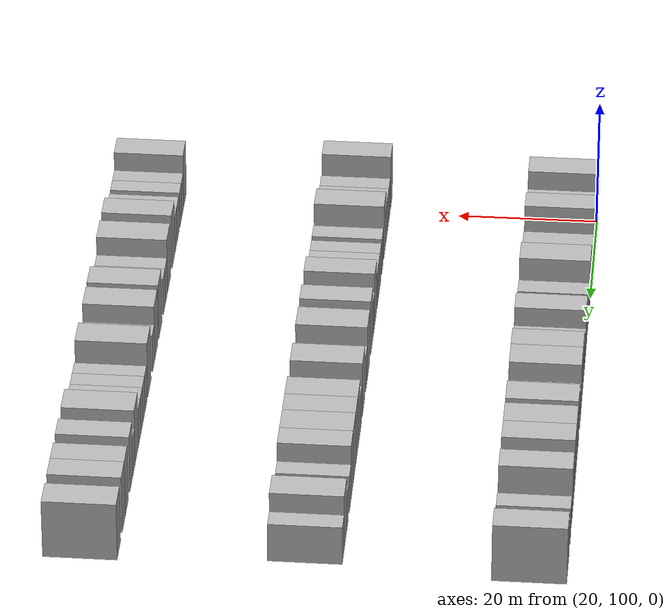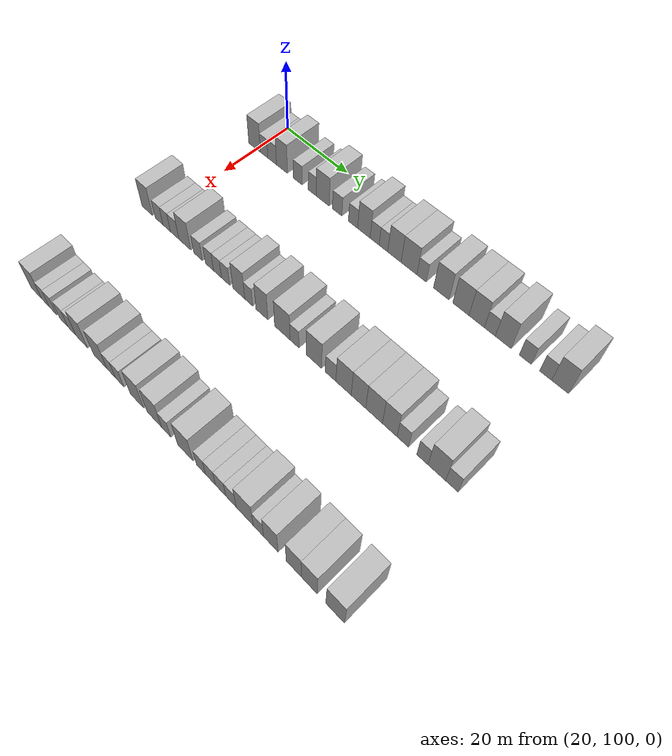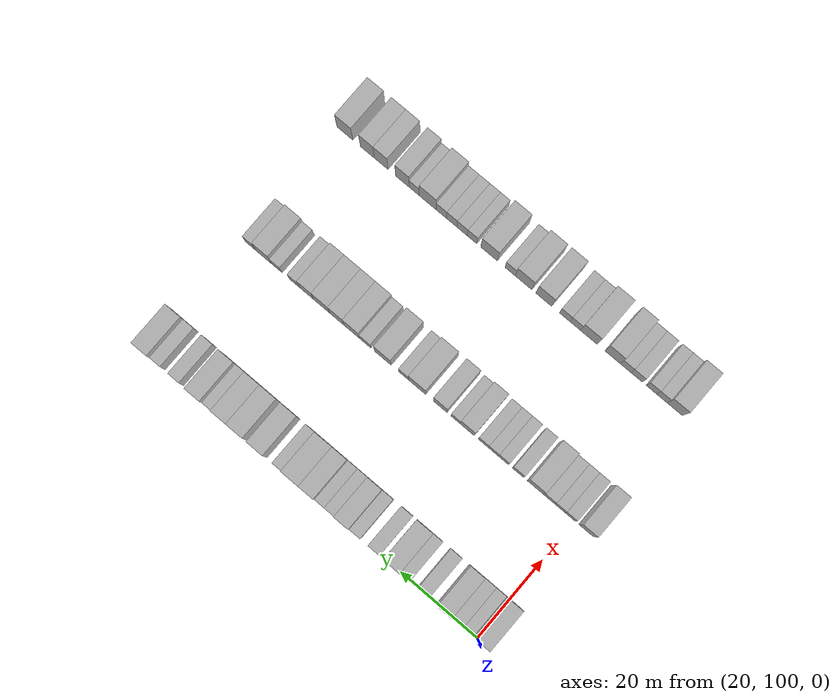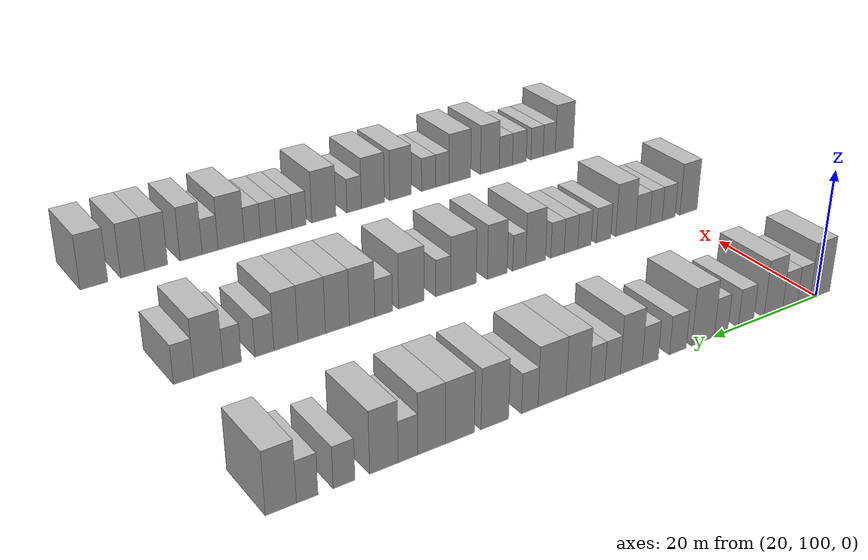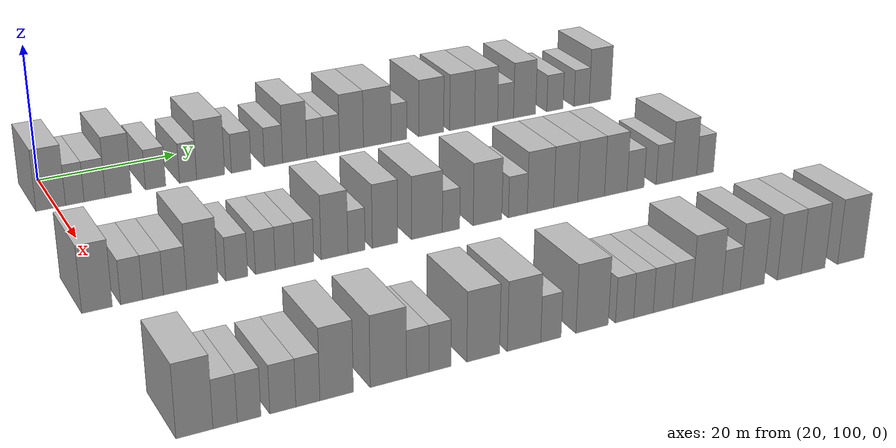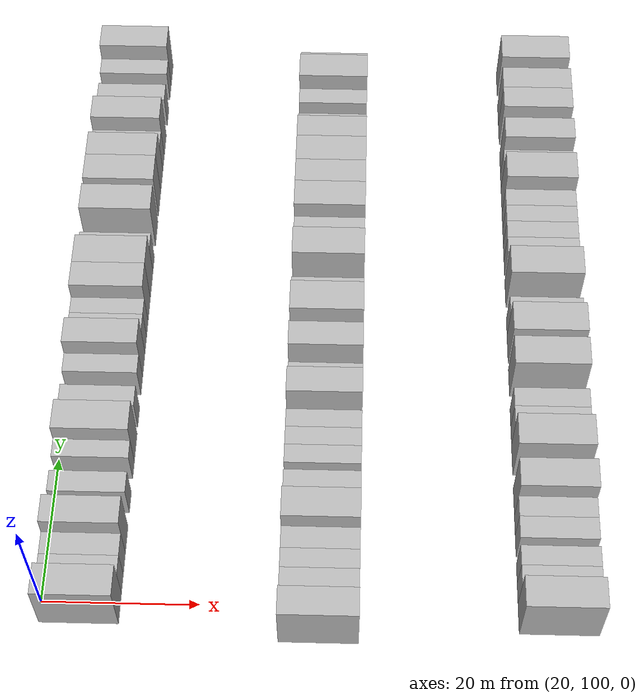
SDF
<sdf version="1.6">
 <world name="default">
  <model name="building_92">
   <static>1</static>
   <pose>25.0000 99.2605 0 0.000000 0.000000 0.000000</pose>
   <link name="link">
    <pose>0 0 4.50 0 0 0</pose>
    <collision name="collision"><geometry><box><size>10.0000 4.0514 9.0000</size></box></geometry></collision>
    <visual name="visual">
     <cast_shadows>0</cast_shadows>
     <geometry><box><size>10.0000 4.0514 9.0000</size></box></geometry>
     <material>
      <script>
       <uri>model://HANNAS_wall/materials/scripts</uri>
       <uri>model://HANNAS_wall/materials/textures</uri>
       <name>vrc/HANNAS_wall</name>
      </script>
     </material>
    </visual>
   </link>
  </model>
  <model name="building_93">
   <static>1</static>
   <pose>25.0000 102.5694 0 0.000000 0.000000 0.000000</pose>
   <link name="link">
    <pose>0 0 3.00 0 0 0</pose>
    <collision name="collision"><geometry><box><size>10.0000 2.5665 6.0000</size></box></geometry></collision>
    <visual name="visual">
     <cast_shadows>0</cast_shadows>
     <geometry><box><size>10.0000 2.5665 6.0000</size></box></geometry>
     <material>
      <script>
       <uri>model://HANNAS_wall/materials/scripts</uri>
       <uri>model://HANNAS_wall/materials/textures</uri>
       <name>vrc/HANNAS_wall</name>
      </script>
     </material>
    </visual>
   </link>
  </model>
  <model name="building_94">
   <static>1</static>
   <pose>25.0000 105.3348 0 0.000000 0.000000 0.000000</pose>
   <link name="link">
    <pose>0 0 3.00 0 0 0</pose>
    <collision name="collision"><geometry><box><size>10.0000 2.9642 6.0000</size></box></geometry></collision>
    <visual name="visual">
     <cast_shadows>0</cast_shadows>
     <geometry><box><size>10.0000 2.9642 6.0000</size></box></geometry>
     <material>
      <script>
       <uri>model://HANNAS_wall/materials/scripts</uri>
       <uri>model://HANNAS_wall/materials/textures</uri>
       <name>vrc/HANNAS_wall</name>
      </script>
     </material>
    </visual>
   </link>
  </model>
  <model name="building_95">
   <static>1</static>
   <pose>25.0000 108.6636 0 0.000000 0.000000 0.000000</pose>
   <link name="link">
    <pose>0 0 4.50 0 0 0</pose>
    <collision name="collision"><geometry><box><size>10.0000 3.6935 9.0000</size></box></geometry></collision>
    <visual name="visual">
     <cast_shadows>0</cast_shadows>
     <geometry><box><size>10.0000 3.6935 9.0000</size></box></geometry>
     <material>
      <script>
       <uri>model://HANNAS_wall/materials/scripts</uri>
       <uri>model://HANNAS_wall/materials/textures</uri>
       <name>vrc/HANNAS_wall</name>
      </script>
     </material>
    </visual>
   </link>
  </model>
  <model name="building_96">
   <static>1</static>
   <pose>25.0000 113.9725 0 0.000000 0.000000 0.000000</pose>
   <link name="link">
    <pose>0 0 3.00 0 0 0</pose>
    <collision name="collision"><geometry><box><size>10.0000 2.9242 6.0000</size></box></geometry></collision>
    <visual name="visual">
     <cast_shadows>0</cast_shadows>
     <geometry><box><size>10.0000 2.9242 6.0000</size></box></geometry>
     <material>
      <script>
       <uri>model://HANNAS_wall/materials/scripts</uri>
       <uri>model://HANNAS_wall/materials/textures</uri>
       <name>vrc/HANNAS_wall</name>
      </script>
     </material>
    </visual>
   </link>
  </model>
  <model name="building_97">
   <static>1</static>
   <pose>25.0000 118.6949 0 0.000000 0.000000 0.000000</pose>
   <link name="link">
    <pose>0 0 3.00 0 0 0</pose>
    <collision name="collision"><geometry><box><size>10.0000 2.5206 6.0000</size></box></geometry></collision>
    <visual name="visual">
     <cast_shadows>0</cast_shadows>
     <geometry><box><size>10.0000 2.5206 6.0000</size></box></geometry>
     <material>
      <script>
       <uri>model://HANNAS_wall/materials/scripts</uri>
       <uri>model://HANNAS_wall/materials/textures</uri>
       <name>vrc/HANNAS_wall</name>
      </script>
     </material>
    </visual>
   </link>
  </model>
  <model name="building_98">
   <static>1</static>
   <pose>25.0000 122.0379 0 0.000000 0.000000 0.000000</pose>
   <link name="link">
    <pose>0 0 4.50 0 0 0</pose>
    <collision name="collision"><geometry><box><size>10.0000 4.1654 9.0000</size></box></geometry></collision>
    <visual name="visual">
     <cast_shadows>0</cast_shadows>
     <geometry><box><size>10.0000 4.1654 9.0000</size></box></geometry>
     <material>
      <script>
       <uri>model://HANNAS_wall/materials/scripts</uri>
       <uri>model://HANNAS_wall/materials/textures</uri>
       <name>vrc/HANNAS_wall</name>
      </script>
     </material>
    </visual>
   </link>
  </model>
  <model name="building_99">
   <static>1</static>
   <pose>25.0000 126.6122 0 0.000000 0.000000 0.000000</pose>
   <link name="link">
    <pose>0 0 3.00 0 0 0</pose>
    <collision name="collision"><geometry><box><size>10.0000 2.9832 6.0000</size></box></geometry></collision>
    <visual name="visual">
     <cast_shadows>0</cast_shadows>
     <geometry><box><size>10.0000 2.9832 6.0000</size></box></geometry>
     <material>
      <script>
       <uri>model://HANNAS_wall/materials/scripts</uri>
       <uri>model://HANNAS_wall/materials/textures</uri>
       <name>vrc/HANNAS_wall</name>
      </script>
     </material>
    </visual>
   </link>
  </model>
  <model name="building_100">
   <static>1</static>
   <pose>25.0000 131.5114 0 0.000000 0.000000 0.000000</pose>
   <link name="link">
    <pose>0 0 3.00 0 0 0</pose>
    <collision name="collision"><geometry><box><size>10.0000 2.8151 6.0000</size></box></geometry></collision>
    <visual name="visual">
     <cast_shadows>0</cast_shadows>
     <geometry><box><size>10.0000 2.8151 6.0000</size></box></geometry>
     <material>
      <script>
       <uri>model://HANNAS_wall/materials/scripts</uri>
       <uri>model://HANNAS_wall/materials/textures</uri>
       <name>vrc/HANNAS_wall</name>
      </script>
     </material>
    </visual>
   </link>
  </model>
  <model name="building_101">
   <static>1</static>
   <pose>25.0000 134.7993 0 0.000000 0.000000 0.000000</pose>
   <link name="link">
    <pose>0 0 4.50 0 0 0</pose>
    <collision name="collision"><geometry><box><size>10.0000 3.7607 9.0000</size></box></geometry></collision>
    <visual name="visual">
     <cast_shadows>0</cast_shadows>
     <geometry><box><size>10.0000 3.7607 9.0000</size></box></geometry>
     <material>
      <script>
       <uri>model://HANNAS_wall/materials/scripts</uri>
       <uri>model://HANNAS_wall/materials/textures</uri>
       <name>vrc/HANNAS_wall</name>
      </script>
     </material>
    </visual>
   </link>
  </model>
  <model name="building_102">
   <static>1</static>
   <pose>25.0000 138.0082 0 0.000000 0.000000 0.000000</pose>
   <link name="link">
    <pose>0 0 3.00 0 0 0</pose>
    <collision name="collision"><geometry><box><size>10.0000 2.6571 6.0000</size></box></geometry></collision>
    <visual name="visual">
     <cast_shadows>0</cast_shadows>
     <geometry><box><size>10.0000 2.6571 6.0000</size></box></geometry>
     <material>
      <script>
       <uri>model://HANNAS_wall/materials/scripts</uri>
       <uri>model://HANNAS_wall/materials/textures</uri>
       <name>vrc/HANNAS_wall</name>
      </script>
     </material>
    </visual>
   </link>
  </model>
  <model name="building_103">
   <static>1</static>
   <pose>25.0000 140.5889 0 0.000000 0.000000 0.000000</pose>
   <link name="link">
    <pose>0 0 3.00 0 0 0</pose>
    <collision name="collision"><geometry><box><size>10.0000 2.5043 6.0000</size></box></geometry></collision>
    <visual name="visual">
     <cast_shadows>0</cast_shadows>
     <geometry><box><size>10.0000 2.5043 6.0000</size></box></geometry>
     <material>
      <script>
       <uri>model://HANNAS_wall/materials/scripts</uri>
       <uri>model://HANNAS_wall/materials/textures</uri>
       <name>vrc/HANNAS_wall</name>
      </script>
     </material>
    </visual>
   </link>
  </model>
  <model name="building_104">
   <static>1</static>
   <pose>25.0000 143.7663 0 0.000000 0.000000 0.000000</pose>
   <link name="link">
    <pose>0 0 4.50 0 0 0</pose>
    <collision name="collision"><geometry><box><size>10.0000 3.8505 9.0000</size></box></geometry></collision>
    <visual name="visual">
     <cast_shadows>0</cast_shadows>
     <geometry><box><size>10.0000 3.8505 9.0000</size></box></geometry>
     <material>
      <script>
       <uri>model://HANNAS_wall/materials/scripts</uri>
       <uri>model://HANNAS_wall/materials/textures</uri>
       <name>vrc/HANNAS_wall</name>
      </script>
     </material>
    </visual>
   </link>
  </model>
  <model name="building_105">
   <static>1</static>
   <pose>25.0000 147.9327 0 0.000000 0.000000 0.000000</pose>
   <link name="link">
    <pose>0 0 4.50 0 0 0</pose>
    <collision name="collision"><geometry><box><size>10.0000 4.4824 9.0000</size></box></geometry></collision>
    <visual name="visual">
     <cast_shadows>0</cast_shadows>
     <geometry><box><size>10.0000 4.4824 9.0000</size></box></geometry>
     <material>
      <script>
       <uri>model://HANNAS_wall/materials/scripts</uri>
       <uri>model://HANNAS_wall/materials/textures</uri>
       <name>vrc/HANNAS_wall</name>
      </script>
     </material>
    </visual>
   </link>
  </model>
  <model name="building_106">
   <static>1</static>
   <pose>25.0000 151.4683 0 0.000000 0.000000 0.000000</pose>
   <link name="link">
    <pose>0 0 3.00 0 0 0</pose>
    <collision name="collision"><geometry><box><size>10.0000 2.5888 6.0000</size></box></geometry></collision>
    <visual name="visual">
     <cast_shadows>0</cast_shadows>
     <geometry><box><size>10.0000 2.5888 6.0000</size></box></geometry>
     <material>
      <script>
       <uri>model://HANNAS_wall/materials/scripts</uri>
       <uri>model://HANNAS_wall/materials/textures</uri>
       <name>vrc/HANNAS_wall</name>
      </script>
     </material>
    </visual>
   </link>
  </model>
  <model name="building_107">
   <static>1</static>
   <pose>25.0000 156.8635 0 0.000000 0.000000 0.000000</pose>
   <link name="link">
    <pose>0 0 4.50 0 0 0</pose>
    <collision name="collision"><geometry><box><size>10.0000 4.2015 9.0000</size></box></geometry></collision>
    <visual name="visual">
     <cast_shadows>0</cast_shadows>
     <geometry><box><size>10.0000 4.2015 9.0000</size></box></geometry>
     <material>
      <script>
       <uri>model://HANNAS_wall/materials/scripts</uri>
       <uri>model://HANNAS_wall/materials/textures</uri>
       <name>vrc/HANNAS_wall</name>
      </script>
     </material>
    </visual>
   </link>
  </model>
  <model name="building_108">
   <static>1</static>
   <pose>25.0000 162.1018 0 0.000000 0.000000 0.000000</pose>
   <link name="link">
    <pose>0 0 4.50 0 0 0</pose>
    <collision name="collision"><geometry><box><size>10.0000 4.2751 9.0000</size></box></geometry></collision>
    <visual name="visual">
     <cast_shadows>0</cast_shadows>
     <geometry><box><size>10.0000 4.2751 9.0000</size></box></geometry>
     <material>
      <script>
       <uri>model://HANNAS_wall/materials/scripts</uri>
       <uri>model://HANNAS_wall/materials/textures</uri>
       <name>vrc/HANNAS_wall</name>
      </script>
     </material>
    </visual>
   </link>
  </model>
  <model name="building_109">
   <static>1</static>
   <pose>25.0000 166.2327 0 0.000000 0.000000 0.000000</pose>
   <link name="link">
    <pose>0 0 4.50 0 0 0</pose>
    <collision name="collision"><geometry><box><size>10.0000 3.9868 9.0000</size></box></geometry></collision>
    <visual name="visual">
     <cast_shadows>0</cast_shadows>
     <geometry><box><size>10.0000 3.9868 9.0000</size></box></geometry>
     <material>
      <script>
       <uri>model://HANNAS_wall/materials/scripts</uri>
       <uri>model://HANNAS_wall/materials/textures</uri>
       <name>vrc/HANNAS_wall</name>
      </script>
     </material>
    </visual>
   </link>
  </model>
  <model name="building_110">
   <static>1</static>
   <pose>25.0000 169.6130 0 0.000000 0.000000 0.000000</pose>
   <link name="link">
    <pose>0 0 3.00 0 0 0</pose>
    <collision name="collision"><geometry><box><size>10.0000 2.7738 6.0000</size></box></geometry></collision>
    <visual name="visual">
     <cast_shadows>0</cast_shadows>
     <geometry><box><size>10.0000 2.7738 6.0000</size></box></geometry>
     <material>
      <script>
       <uri>model://HANNAS_wall/materials/scripts</uri>
       <uri>model://HANNAS_wall/materials/textures</uri>
       <name>vrc/HANNAS_wall</name>
      </script>
     </material>
    </visual>
   </link>
  </model>
  <model name="building_111">
   <static>1</static>
   <pose>25.0000 172.9711 0 0.000000 0.000000 0.000000</pose>
   <link name="link">
    <pose>0 0 4.50 0 0 0</pose>
    <collision name="collision"><geometry><box><size>10.0000 3.9425 9.0000</size></box></geometry></collision>
    <visual name="visual">
     <cast_shadows>0</cast_shadows>
     <geometry><box><size>10.0000 3.9425 9.0000</size></box></geometry>
     <material>
      <script>
       <uri>model://HANNAS_wall/materials/scripts</uri>
       <uri>model://HANNAS_wall/materials/textures</uri>
       <name>vrc/HANNAS_wall</name>
      </script>
     </material>
    </visual>
   </link>
  </model>
  <model name="building_112">
   <static>1</static>
   <pose>25.0000 178.4088 0 0.000000 0.000000 0.000000</pose>
   <link name="link">
    <pose>0 0 3.00 0 0 0</pose>
    <collision name="collision"><geometry><box><size>10.0000 2.9330 6.0000</size></box></geometry></collision>
    <visual name="visual">
     <cast_shadows>0</cast_shadows>
     <geometry><box><size>10.0000 2.9330 6.0000</size></box></geometry>
     <material>
      <script>
       <uri>model://HANNAS_wall/materials/scripts</uri>
       <uri>model://HANNAS_wall/materials/textures</uri>
       <name>vrc/HANNAS_wall</name>
      </script>
     </material>
    </visual>
   </link>
  </model>
  <model name="building_113">
   <static>1</static>
   <pose>25.0000 183.2794 0 0.000000 0.000000 0.000000</pose>
   <link name="link">
    <pose>0 0 3.00 0 0 0</pose>
    <collision name="collision"><geometry><box><size>10.0000 2.8082 6.0000</size></box></geometry></collision>
    <visual name="visual">
     <cast_shadows>0</cast_shadows>
     <geometry><box><size>10.0000 2.8082 6.0000</size></box></geometry>
     <material>
      <script>
       <uri>model://HANNAS_wall/materials/scripts</uri>
       <uri>model://HANNAS_wall/materials/textures</uri>
       <name>vrc/HANNAS_wall</name>
      </script>
     </material>
    </visual>
   </link>
  </model>
  <model name="building_114">
   <static>1</static>
   <pose>25.0000 186.6768 0 0.000000 0.000000 0.000000</pose>
   <link name="link">
    <pose>0 0 4.50 0 0 0</pose>
    <collision name="collision"><geometry><box><size>10.0000 3.9866 9.0000</size></box></geometry></collision>
    <visual name="visual">
     <cast_shadows>0</cast_shadows>
     <geometry><box><size>10.0000 3.9866 9.0000</size></box></geometry>
     <material>
      <script>
       <uri>model://HANNAS_wall/materials/scripts</uri>
       <uri>model://HANNAS_wall/materials/textures</uri>
       <name>vrc/HANNAS_wall</name>
      </script>
     </material>
    </visual>
   </link>
  </model>
  <model name="building_233">
   <static>1</static>
   <pose>55.0000 97.2122 0 0.000000 0.000000 0.000000</pose>
   <link name="link">
    <pose>0 0 4.50 0 0 0</pose>
    <collision name="collision"><geometry><box><size>10.0000 3.7436 9.0000</size></box></geometry></collision>
    <visual name="visual">
     <cast_shadows>0</cast_shadows>
     <geometry><box><size>10.0000 3.7436 9.0000</size></box></geometry>
     <material>
      <script>
       <uri>model://HANNAS_wall/materials/scripts</uri>
       <uri>model://HANNAS_wall/materials/textures</uri>
       <name>vrc/HANNAS_wall</name>
      </script>
     </material>
    </visual>
   </link>
  </model>
  <model name="building_234">
   <static>1</static>
   <pose>55.0000 101.4481 0 0.000000 0.000000 0.000000</pose>
   <link name="link">
    <pose>0 0 3.00 0 0 0</pose>
    <collision name="collision"><geometry><box><size>10.0000 2.7283 6.0000</size></box></geometry></collision>
    <visual name="visual">
     <cast_shadows>0</cast_shadows>
     <geometry><box><size>10.0000 2.7283 6.0000</size></box></geometry>
     <material>
      <script>
       <uri>model://HANNAS_wall/materials/scripts</uri>
       <uri>model://HANNAS_wall/materials/textures</uri>
       <name>vrc/HANNAS_wall</name>
      </script>
     </material>
    </visual>
   </link>
  </model>
  <model name="building_235">
   <static>1</static>
   <pose>55.0000 104.1125 0 0.000000 0.000000 0.000000</pose>
   <link name="link">
    <pose>0 0 3.00 0 0 0</pose>
    <collision name="collision"><geometry><box><size>10.0000 2.6003 6.0000</size></box></geometry></collision>
    <visual name="visual">
     <cast_shadows>0</cast_shadows>
     <geometry><box><size>10.0000 2.6003 6.0000</size></box></geometry>
     <material>
      <script>
       <uri>model://HANNAS_wall/materials/scripts</uri>
       <uri>model://HANNAS_wall/materials/textures</uri>
       <name>vrc/HANNAS_wall</name>
      </script>
     </material>
    </visual>
   </link>
  </model>
  <model name="building_236">
   <static>1</static>
   <pose>55.0000 106.8834 0 0.000000 0.000000 0.000000</pose>
   <link name="link">
    <pose>0 0 3.00 0 0 0</pose>
    <collision name="collision"><geometry><box><size>10.0000 2.9415 6.0000</size></box></geometry></collision>
    <visual name="visual">
     <cast_shadows>0</cast_shadows>
     <geometry><box><size>10.0000 2.9415 6.0000</size></box></geometry>
     <material>
      <script>
       <uri>model://HANNAS_wall/materials/scripts</uri>
       <uri>model://HANNAS_wall/materials/textures</uri>
       <name>vrc/HANNAS_wall</name>
      </script>
     </material>
    </visual>
   </link>
  </model>
  <model name="building_237">
   <static>1</static>
   <pose>55.0000 110.3790 0 0.000000 0.000000 0.000000</pose>
   <link name="link">
    <pose>0 0 4.50 0 0 0</pose>
    <collision name="collision"><geometry><box><size>10.0000 4.0497 9.0000</size></box></geometry></collision>
    <visual name="visual">
     <cast_shadows>0</cast_shadows>
     <geometry><box><size>10.0000 4.0497 9.0000</size></box></geometry>
     <material>
      <script>
       <uri>model://HANNAS_wall/materials/scripts</uri>
       <uri>model://HANNAS_wall/materials/textures</uri>
       <name>vrc/HANNAS_wall</name>
      </script>
     </material>
    </visual>
   </link>
  </model>
  <model name="building_238">
   <static>1</static>
   <pose>55.0000 114.8534 0 0.000000 0.000000 0.000000</pose>
   <link name="link">
    <pose>0 0 3.00 0 0 0</pose>
    <collision name="collision"><geometry><box><size>10.0000 2.8992 6.0000</size></box></geometry></collision>
    <visual name="visual">
     <cast_shadows>0</cast_shadows>
     <geometry><box><size>10.0000 2.8992 6.0000</size></box></geometry>
     <material>
      <script>
       <uri>model://HANNAS_wall/materials/scripts</uri>
       <uri>model://HANNAS_wall/materials/textures</uri>
       <name>vrc/HANNAS_wall</name>
      </script>
     </material>
    </visual>
   </link>
  </model>
  <model name="building_239">
   <static>1</static>
   <pose>55.0000 118.6178 0 0.000000 0.000000 0.000000</pose>
   <link name="link">
    <pose>0 0 3.00 0 0 0</pose>
    <collision name="collision"><geometry><box><size>10.0000 2.6296 6.0000</size></box></geometry></collision>
    <visual name="visual">
     <cast_shadows>0</cast_shadows>
     <geometry><box><size>10.0000 2.6296 6.0000</size></box></geometry>
     <material>
      <script>
       <uri>model://HANNAS_wall/materials/scripts</uri>
       <uri>model://HANNAS_wall/materials/textures</uri>
       <name>vrc/HANNAS_wall</name>
      </script>
     </material>
    </visual>
   </link>
  </model>
  <model name="building_240">
   <static>1</static>
   <pose>55.0000 121.2393 0 0.000000 0.000000 0.000000</pose>
   <link name="link">
    <pose>0 0 3.00 0 0 0</pose>
    <collision name="collision"><geometry><box><size>10.0000 2.6133 6.0000</size></box></geometry></collision>
    <visual name="visual">
     <cast_shadows>0</cast_shadows>
     <geometry><box><size>10.0000 2.6133 6.0000</size></box></geometry>
     <material>
      <script>
       <uri>model://HANNAS_wall/materials/scripts</uri>
       <uri>model://HANNAS_wall/materials/textures</uri>
       <name>vrc/HANNAS_wall</name>
      </script>
     </material>
    </visual>
   </link>
  </model>
  <model name="building_241">
   <static>1</static>
   <pose>55.0000 123.8487 0 0.000000 0.000000 0.000000</pose>
   <link name="link">
    <pose>0 0 3.00 0 0 0</pose>
    <collision name="collision"><geometry><box><size>10.0000 2.6057 6.0000</size></box></geometry></collision>
    <visual name="visual">
     <cast_shadows>0</cast_shadows>
     <geometry><box><size>10.0000 2.6057 6.0000</size></box></geometry>
     <material>
      <script>
       <uri>model://HANNAS_wall/materials/scripts</uri>
       <uri>model://HANNAS_wall/materials/textures</uri>
       <name>vrc/HANNAS_wall</name>
      </script>
     </material>
    </visual>
   </link>
  </model>
  <model name="building_242">
   <static>1</static>
   <pose>55.0000 128.0071 0 0.000000 0.000000 0.000000</pose>
   <link name="link">
    <pose>0 0 4.50 0 0 0</pose>
    <collision name="collision"><geometry><box><size>10.0000 3.7111 9.0000</size></box></geometry></collision>
    <visual name="visual">
     <cast_shadows>0</cast_shadows>
     <geometry><box><size>10.0000 3.7111 9.0000</size></box></geometry>
     <material>
      <script>
       <uri>model://HANNAS_wall/materials/scripts</uri>
       <uri>model://HANNAS_wall/materials/textures</uri>
       <name>vrc/HANNAS_wall</name>
      </script>
     </material>
    </visual>
   </link>
  </model>
  <model name="building_243">
   <static>1</static>
   <pose>55.0000 131.0716 0 0.000000 0.000000 0.000000</pose>
   <link name="link">
    <pose>0 0 3.00 0 0 0</pose>
    <collision name="collision"><geometry><box><size>10.0000 2.4179 6.0000</size></box></geometry></collision>
    <visual name="visual">
     <cast_shadows>0</cast_shadows>
     <geometry><box><size>10.0000 2.4179 6.0000</size></box></geometry>
     <material>
      <script>
       <uri>model://HANNAS_wall/materials/scripts</uri>
       <uri>model://HANNAS_wall/materials/textures</uri>
       <name>vrc/HANNAS_wall</name>
      </script>
     </material>
    </visual>
   </link>
  </model>
  <model name="building_244">
   <static>1</static>
   <pose>55.0000 135.0824 0 0.000000 0.000000 0.000000</pose>
   <link name="link">
    <pose>0 0 4.50 0 0 0</pose>
    <collision name="collision"><geometry><box><size>10.0000 3.6038 9.0000</size></box></geometry></collision>
    <visual name="visual">
     <cast_shadows>0</cast_shadows>
     <geometry><box><size>10.0000 3.6038 9.0000</size></box></geometry>
     <material>
      <script>
       <uri>model://HANNAS_wall/materials/scripts</uri>
       <uri>model://HANNAS_wall/materials/textures</uri>
       <name>vrc/HANNAS_wall</name>
      </script>
     </material>
    </visual>
   </link>
  </model>
  <model name="building_245">
   <static>1</static>
   <pose>55.0000 141.1270 0 0.000000 0.000000 0.000000</pose>
   <link name="link">
    <pose>0 0 4.50 0 0 0</pose>
    <collision name="collision"><geometry><box><size>10.0000 4.4853 9.0000</size></box></geometry></collision>
    <visual name="visual">
     <cast_shadows>0</cast_shadows>
     <geometry><box><size>10.0000 4.4853 9.0000</size></box></geometry>
     <material>
      <script>
       <uri>model://HANNAS_wall/materials/scripts</uri>
       <uri>model://HANNAS_wall/materials/textures</uri>
       <name>vrc/HANNAS_wall</name>
      </script>
     </material>
    </visual>
   </link>
  </model>
  <model name="building_246">
   <static>1</static>
   <pose>55.0000 144.6574 0 0.000000 0.000000 0.000000</pose>
   <link name="link">
    <pose>0 0 3.00 0 0 0</pose>
    <collision name="collision"><geometry><box><size>10.0000 2.5754 6.0000</size></box></geometry></collision>
    <visual name="visual">
     <cast_shadows>0</cast_shadows>
     <geometry><box><size>10.0000 2.5754 6.0000</size></box></geometry>
     <material>
      <script>
       <uri>model://HANNAS_wall/materials/scripts</uri>
       <uri>model://HANNAS_wall/materials/textures</uri>
       <name>vrc/HANNAS_wall</name>
      </script>
     </material>
    </visual>
   </link>
  </model>
  <model name="building_247">
   <static>1</static>
   <pose>55.0000 150.1119 0 0.000000 0.000000 0.000000</pose>
   <link name="link">
    <pose>0 0 4.50 0 0 0</pose>
    <collision name="collision"><geometry><box><size>10.0000 4.3338 9.0000</size></box></geometry></collision>
    <visual name="visual">
     <cast_shadows>0</cast_shadows>
     <geometry><box><size>10.0000 4.3338 9.0000</size></box></geometry>
     <material>
      <script>
       <uri>model://HANNAS_wall/materials/scripts</uri>
       <uri>model://HANNAS_wall/materials/textures</uri>
       <name>vrc/HANNAS_wall</name>
      </script>
     </material>
    </visual>
   </link>
  </model>
  <model name="building_248">
   <static>1</static>
   <pose>55.0000 154.7268 0 0.000000 0.000000 0.000000</pose>
   <link name="link">
    <pose>0 0 3.00 0 0 0</pose>
    <collision name="collision"><geometry><box><size>10.0000 2.8960 6.0000</size></box></geometry></collision>
    <visual name="visual">
     <cast_shadows>0</cast_shadows>
     <geometry><box><size>10.0000 2.8960 6.0000</size></box></geometry>
     <material>
      <script>
       <uri>model://HANNAS_wall/materials/scripts</uri>
       <uri>model://HANNAS_wall/materials/textures</uri>
       <name>vrc/HANNAS_wall</name>
      </script>
     </material>
    </visual>
   </link>
  </model>
  <model name="building_249">
   <static>1</static>
   <pose>55.0000 158.2367 0 0.000000 0.000000 0.000000</pose>
   <link name="link">
    <pose>0 0 4.50 0 0 0</pose>
    <collision name="collision"><geometry><box><size>10.0000 4.1237 9.0000</size></box></geometry></collision>
    <visual name="visual">
     <cast_shadows>0</cast_shadows>
     <geometry><box><size>10.0000 4.1237 9.0000</size></box></geometry>
     <material>
      <script>
       <uri>model://HANNAS_wall/materials/scripts</uri>
       <uri>model://HANNAS_wall/materials/textures</uri>
       <name>vrc/HANNAS_wall</name>
      </script>
     </material>
    </visual>
   </link>
  </model>
  <model name="building_250">
   <static>1</static>
   <pose>55.0000 162.2006 0 0.000000 0.000000 0.000000</pose>
   <link name="link">
    <pose>0 0 4.50 0 0 0</pose>
    <collision name="collision"><geometry><box><size>10.0000 3.8042 9.0000</size></box></geometry></collision>
    <visual name="visual">
     <cast_shadows>0</cast_shadows>
     <geometry><box><size>10.0000 3.8042 9.0000</size></box></geometry>
     <material>
      <script>
       <uri>model://HANNAS_wall/materials/scripts</uri>
       <uri>model://HANNAS_wall/materials/textures</uri>
       <name>vrc/HANNAS_wall</name>
      </script>
     </material>
    </visual>
   </link>
  </model>
  <model name="building_251">
   <static>1</static>
   <pose>55.0000 166.2487 0 0.000000 0.000000 0.000000</pose>
   <link name="link">
    <pose>0 0 4.50 0 0 0</pose>
    <collision name="collision"><geometry><box><size>10.0000 4.2921 9.0000</size></box></geometry></collision>
    <visual name="visual">
     <cast_shadows>0</cast_shadows>
     <geometry><box><size>10.0000 4.2921 9.0000</size></box></geometry>
     <material>
      <script>
       <uri>model://HANNAS_wall/materials/scripts</uri>
       <uri>model://HANNAS_wall/materials/textures</uri>
       <name>vrc/HANNAS_wall</name>
      </script>
     </material>
    </visual>
   </link>
  </model>
  <model name="building_252">
   <static>1</static>
   <pose>55.0000 170.2300 0 0.000000 0.000000 0.000000</pose>
   <link name="link">
    <pose>0 0 4.50 0 0 0</pose>
    <collision name="collision"><geometry><box><size>10.0000 3.6706 9.0000</size></box></geometry></collision>
    <visual name="visual">
     <cast_shadows>0</cast_shadows>
     <geometry><box><size>10.0000 3.6706 9.0000</size></box></geometry>
     <material>
      <script>
       <uri>model://HANNAS_wall/materials/scripts</uri>
       <uri>model://HANNAS_wall/materials/textures</uri>
       <name>vrc/HANNAS_wall</name>
      </script>
     </material>
    </visual>
   </link>
  </model>
  <model name="building_253">
   <static>1</static>
   <pose>55.0000 173.4822 0 0.000000 0.000000 0.000000</pose>
   <link name="link">
    <pose>0 0 3.00 0 0 0</pose>
    <collision name="collision"><geometry><box><size>10.0000 2.8338 6.0000</size></box></geometry></collision>
    <visual name="visual">
     <cast_shadows>0</cast_shadows>
     <geometry><box><size>10.0000 2.8338 6.0000</size></box></geometry>
     <material>
      <script>
       <uri>model://HANNAS_wall/materials/scripts</uri>
       <uri>model://HANNAS_wall/materials/textures</uri>
       <name>vrc/HANNAS_wall</name>
      </script>
     </material>
    </visual>
   </link>
  </model>
  <model name="building_254">
   <static>1</static>
   <pose>55.0000 178.2400 0 0.000000 0.000000 0.000000</pose>
   <link name="link">
    <pose>0 0 3.00 0 0 0</pose>
    <collision name="collision"><geometry><box><size>10.0000 2.6818 6.0000</size></box></geometry></collision>
    <visual name="visual">
     <cast_shadows>0</cast_shadows>
     <geometry><box><size>10.0000 2.6818 6.0000</size></box></geometry>
     <material>
      <script>
       <uri>model://HANNAS_wall/materials/scripts</uri>
       <uri>model://HANNAS_wall/materials/textures</uri>
       <name>vrc/HANNAS_wall</name>
      </script>
     </material>
    </visual>
   </link>
  </model>
  <model name="building_255">
   <static>1</static>
   <pose>55.0000 181.6688 0 0.000000 0.000000 0.000000</pose>
   <link name="link">
    <pose>0 0 4.50 0 0 0</pose>
    <collision name="collision"><geometry><box><size>10.0000 4.1759 9.0000</size></box></geometry></collision>
    <visual name="visual">
     <cast_shadows>0</cast_shadows>
     <geometry><box><size>10.0000 4.1759 9.0000</size></box></geometry>
     <material>
      <script>
       <uri>model://HANNAS_wall/materials/scripts</uri>
       <uri>model://HANNAS_wall/materials/textures</uri>
       <name>vrc/HANNAS_wall</name>
      </script>
     </material>
    </visual>
   </link>
  </model>
  <model name="building_256">
   <static>1</static>
   <pose>55.0000 185.2143 0 0.000000 0.000000 0.000000</pose>
   <link name="link">
    <pose>0 0 3.00 0 0 0</pose>
    <collision name="collision"><geometry><box><size>10.0000 2.9150 6.0000</size></box></geometry></collision>
    <visual name="visual">
     <cast_shadows>0</cast_shadows>
     <geometry><box><size>10.0000 2.9150 6.0000</size></box></geometry>
     <material>
      <script>
       <uri>model://HANNAS_wall/materials/scripts</uri>
       <uri>model://HANNAS_wall/materials/textures</uri>
       <name>vrc/HANNAS_wall</name>
      </script>
     </material>
    </visual>
   </link>
  </model>
  <model name="building_370">
   <static>1</static>
   <pose>85.0000 99.0995 0 0.000000 0.000000 0.000000</pose>
   <link name="link">
    <pose>0 0 4.50 0 0 0</pose>
    <collision name="collision"><geometry><box><size>10.0000 4.0374 9.0000</size></box></geometry></collision>
    <visual name="visual">
     <cast_shadows>0</cast_shadows>
     <geometry><box><size>10.0000 4.0374 9.0000</size></box></geometry>
     <material>
      <script>
       <uri>model://HANNAS_wall/materials/scripts</uri>
       <uri>model://HANNAS_wall/materials/textures</uri>
       <name>vrc/HANNAS_wall</name>
      </script>
     </material>
    </visual>
   </link>
  </model>
  <model name="building_371">
   <static>1</static>
   <pose>85.0000 102.4621 0 0.000000 0.000000 0.000000</pose>
   <link name="link">
    <pose>0 0 3.00 0 0 0</pose>
    <collision name="collision"><geometry><box><size>10.0000 2.6879 6.0000</size></box></geometry></collision>
    <visual name="visual">
     <cast_shadows>0</cast_shadows>
     <geometry><box><size>10.0000 2.6879 6.0000</size></box></geometry>
     <material>
      <script>
       <uri>model://HANNAS_wall/materials/scripts</uri>
       <uri>model://HANNAS_wall/materials/textures</uri>
       <name>vrc/HANNAS_wall</name>
      </script>
     </material>
    </visual>
   </link>
  </model>
  <model name="building_372">
   <static>1</static>
   <pose>85.0000 105.1393 0 0.000000 0.000000 0.000000</pose>
   <link name="link">
    <pose>0 0 3.00 0 0 0</pose>
    <collision name="collision"><geometry><box><size>10.0000 2.6665 6.0000</size></box></geometry></collision>
    <visual name="visual">
     <cast_shadows>0</cast_shadows>
     <geometry><box><size>10.0000 2.6665 6.0000</size></box></geometry>
     <material>
      <script>
       <uri>model://HANNAS_wall/materials/scripts</uri>
       <uri>model://HANNAS_wall/materials/textures</uri>
       <name>vrc/HANNAS_wall</name>
      </script>
     </material>
    </visual>
   </link>
  </model>
  <model name="building_373">
   <static>1</static>
   <pose>85.0000 108.9594 0 0.000000 0.000000 0.000000</pose>
   <link name="link">
    <pose>0 0 3.00 0 0 0</pose>
    <collision name="collision"><geometry><box><size>10.0000 2.9736 6.0000</size></box></geometry></collision>
    <visual name="visual">
     <cast_shadows>0</cast_shadows>
     <geometry><box><size>10.0000 2.9736 6.0000</size></box></geometry>
     <material>
      <script>
       <uri>model://HANNAS_wall/materials/scripts</uri>
       <uri>model://HANNAS_wall/materials/textures</uri>
       <name>vrc/HANNAS_wall</name>
      </script>
     </material>
    </visual>
   </link>
  </model>
  <model name="building_374">
   <static>1</static>
   <pose>85.0000 111.8383 0 0.000000 0.000000 0.000000</pose>
   <link name="link">
    <pose>0 0 3.00 0 0 0</pose>
    <collision name="collision"><geometry><box><size>10.0000 2.7842 6.0000</size></box></geometry></collision>
    <visual name="visual">
     <cast_shadows>0</cast_shadows>
     <geometry><box><size>10.0000 2.7842 6.0000</size></box></geometry>
     <material>
      <script>
       <uri>model://HANNAS_wall/materials/scripts</uri>
       <uri>model://HANNAS_wall/materials/textures</uri>
       <name>vrc/HANNAS_wall</name>
      </script>
     </material>
    </visual>
   </link>
  </model>
  <model name="building_375">
   <static>1</static>
   <pose>85.0000 115.2065 0 0.000000 0.000000 0.000000</pose>
   <link name="link">
    <pose>0 0 4.50 0 0 0</pose>
    <collision name="collision"><geometry><box><size>10.0000 3.9521 9.0000</size></box></geometry></collision>
    <visual name="visual">
     <cast_shadows>0</cast_shadows>
     <geometry><box><size>10.0000 3.9521 9.0000</size></box></geometry>
     <material>
      <script>
       <uri>model://HANNAS_wall/materials/scripts</uri>
       <uri>model://HANNAS_wall/materials/textures</uri>
       <name>vrc/HANNAS_wall</name>
      </script>
     </material>
    </visual>
   </link>
  </model>
  <model name="building_376">
   <static>1</static>
   <pose>85.0000 121.3862 0 0.000000 0.000000 0.000000</pose>
   <link name="link">
    <pose>0 0 4.50 0 0 0</pose>
    <collision name="collision"><geometry><box><size>10.0000 4.4072 9.0000</size></box></geometry></collision>
    <visual name="visual">
     <cast_shadows>0</cast_shadows>
     <geometry><box><size>10.0000 4.4072 9.0000</size></box></geometry>
     <material>
      <script>
       <uri>model://HANNAS_wall/materials/scripts</uri>
       <uri>model://HANNAS_wall/materials/textures</uri>
       <name>vrc/HANNAS_wall</name>
      </script>
     </material>
    </visual>
   </link>
  </model>
  <model name="building_377">
   <static>1</static>
   <pose>85.0000 124.9603 0 0.000000 0.000000 0.000000</pose>
   <link name="link">
    <pose>0 0 3.00 0 0 0</pose>
    <collision name="collision"><geometry><box><size>10.0000 2.7409 6.0000</size></box></geometry></collision>
    <visual name="visual">
     <cast_shadows>0</cast_shadows>
     <geometry><box><size>10.0000 2.7409 6.0000</size></box></geometry>
     <material>
      <script>
       <uri>model://HANNAS_wall/materials/scripts</uri>
       <uri>model://HANNAS_wall/materials/textures</uri>
       <name>vrc/HANNAS_wall</name>
      </script>
     </material>
    </visual>
   </link>
  </model>
  <model name="building_378">
   <static>1</static>
   <pose>85.0000 127.7150 0 0.000000 0.000000 0.000000</pose>
   <link name="link">
    <pose>0 0 3.00 0 0 0</pose>
    <collision name="collision"><geometry><box><size>10.0000 2.7686 6.0000</size></box></geometry></collision>
    <visual name="visual">
     <cast_shadows>0</cast_shadows>
     <geometry><box><size>10.0000 2.7686 6.0000</size></box></geometry>
     <material>
      <script>
       <uri>model://HANNAS_wall/materials/scripts</uri>
       <uri>model://HANNAS_wall/materials/textures</uri>
       <name>vrc/HANNAS_wall</name>
      </script>
     </material>
    </visual>
   </link>
  </model>
  <model name="building_379">
   <static>1</static>
   <pose>85.0000 133.1962 0 0.000000 0.000000 0.000000</pose>
   <link name="link">
    <pose>0 0 4.50 0 0 0</pose>
    <collision name="collision"><geometry><box><size>10.0000 4.1937 9.0000</size></box></geometry></collision>
    <visual name="visual">
     <cast_shadows>0</cast_shadows>
     <geometry><box><size>10.0000 4.1937 9.0000</size></box></geometry>
     <material>
      <script>
       <uri>model://HANNAS_wall/materials/scripts</uri>
       <uri>model://HANNAS_wall/materials/textures</uri>
       <name>vrc/HANNAS_wall</name>
      </script>
     </material>
    </visual>
   </link>
  </model>
  <model name="building_380">
   <static>1</static>
   <pose>85.0000 138.4866 0 0.000000 0.000000 0.000000</pose>
   <link name="link">
    <pose>0 0 4.50 0 0 0</pose>
    <collision name="collision"><geometry><box><size>10.0000 4.3872 9.0000</size></box></geometry></collision>
    <visual name="visual">
     <cast_shadows>0</cast_shadows>
     <geometry><box><size>10.0000 4.3872 9.0000</size></box></geometry>
     <material>
      <script>
       <uri>model://HANNAS_wall/materials/scripts</uri>
       <uri>model://HANNAS_wall/materials/textures</uri>
       <name>vrc/HANNAS_wall</name>
      </script>
     </material>
    </visual>
   </link>
  </model>
  <model name="building_381">
   <static>1</static>
   <pose>85.0000 142.0441 0 0.000000 0.000000 0.000000</pose>
   <link name="link">
    <pose>0 0 3.00 0 0 0</pose>
    <collision name="collision"><geometry><box><size>10.0000 2.7279 6.0000</size></box></geometry></collision>
    <visual name="visual">
     <cast_shadows>0</cast_shadows>
     <geometry><box><size>10.0000 2.7279 6.0000</size></box></geometry>
     <material>
      <script>
       <uri>model://HANNAS_wall/materials/scripts</uri>
       <uri>model://HANNAS_wall/materials/textures</uri>
       <name>vrc/HANNAS_wall</name>
      </script>
     </material>
    </visual>
   </link>
  </model>
  <model name="building_382">
   <static>1</static>
   <pose>85.0000 147.6135 0 0.000000 0.000000 0.000000</pose>
   <link name="link">
    <pose>0 0 4.50 0 0 0</pose>
    <collision name="collision"><geometry><box><size>10.0000 4.4108 9.0000</size></box></geometry></collision>
    <visual name="visual">
     <cast_shadows>0</cast_shadows>
     <geometry><box><size>10.0000 4.4108 9.0000</size></box></geometry>
     <material>
      <script>
       <uri>model://HANNAS_wall/materials/scripts</uri>
       <uri>model://HANNAS_wall/materials/textures</uri>
       <name>vrc/HANNAS_wall</name>
      </script>
     </material>
    </visual>
   </link>
  </model>
  <model name="building_383">
   <static>1</static>
   <pose>85.0000 152.0938 0 0.000000 0.000000 0.000000</pose>
   <link name="link">
    <pose>0 0 3.00 0 0 0</pose>
    <collision name="collision"><geometry><box><size>10.0000 2.5498 6.0000</size></box></geometry></collision>
    <visual name="visual">
     <cast_shadows>0</cast_shadows>
     <geometry><box><size>10.0000 2.5498 6.0000</size></box></geometry>
     <material>
      <script>
       <uri>model://HANNAS_wall/materials/scripts</uri>
       <uri>model://HANNAS_wall/materials/textures</uri>
       <name>vrc/HANNAS_wall</name>
      </script>
     </material>
    </visual>
   </link>
  </model>
  <model name="building_384">
   <static>1</static>
   <pose>85.0000 154.7430 0 0.000000 0.000000 0.000000</pose>
   <link name="link">
    <pose>0 0 3.00 0 0 0</pose>
    <collision name="collision"><geometry><box><size>10.0000 2.7488 6.0000</size></box></geometry></collision>
    <visual name="visual">
     <cast_shadows>0</cast_shadows>
     <geometry><box><size>10.0000 2.7488 6.0000</size></box></geometry>
     <material>
      <script>
       <uri>model://HANNAS_wall/materials/scripts</uri>
       <uri>model://HANNAS_wall/materials/textures</uri>
       <name>vrc/HANNAS_wall</name>
      </script>
     </material>
    </visual>
   </link>
  </model>
  <model name="building_385">
   <static>1</static>
   <pose>85.0000 157.5061 0 0.000000 0.000000 0.000000</pose>
   <link name="link">
    <pose>0 0 3.00 0 0 0</pose>
    <collision name="collision"><geometry><box><size>10.0000 2.7773 6.0000</size></box></geometry></collision>
    <visual name="visual">
     <cast_shadows>0</cast_shadows>
     <geometry><box><size>10.0000 2.7773 6.0000</size></box></geometry>
     <material>
      <script>
       <uri>model://HANNAS_wall/materials/scripts</uri>
       <uri>model://HANNAS_wall/materials/textures</uri>
       <name>vrc/HANNAS_wall</name>
      </script>
     </material>
    </visual>
   </link>
  </model>
  <model name="building_386">
   <static>1</static>
   <pose>85.0000 160.2944 0 0.000000 0.000000 0.000000</pose>
   <link name="link">
    <pose>0 0 3.00 0 0 0</pose>
    <collision name="collision"><geometry><box><size>10.0000 2.7993 6.0000</size></box></geometry></collision>
    <visual name="visual">
     <cast_shadows>0</cast_shadows>
     <geometry><box><size>10.0000 2.7993 6.0000</size></box></geometry>
     <material>
      <script>
       <uri>model://HANNAS_wall/materials/scripts</uri>
       <uri>model://HANNAS_wall/materials/textures</uri>
       <name>vrc/HANNAS_wall</name>
      </script>
     </material>
    </visual>
   </link>
  </model>
  <model name="building_387">
   <static>1</static>
   <pose>85.0000 163.9084 0 0.000000 0.000000 0.000000</pose>
   <link name="link">
    <pose>0 0 4.50 0 0 0</pose>
    <collision name="collision"><geometry><box><size>10.0000 4.4287 9.0000</size></box></geometry></collision>
    <visual name="visual">
     <cast_shadows>0</cast_shadows>
     <geometry><box><size>10.0000 4.4287 9.0000</size></box></geometry>
     <material>
      <script>
       <uri>model://HANNAS_wall/materials/scripts</uri>
       <uri>model://HANNAS_wall/materials/textures</uri>
       <name>vrc/HANNAS_wall</name>
      </script>
     </material>
    </visual>
   </link>
  </model>
  <model name="building_388">
   <static>1</static>
   <pose>85.0000 167.4579 0 0.000000 0.000000 0.000000</pose>
   <link name="link">
    <pose>0 0 3.00 0 0 0</pose>
    <collision name="collision"><geometry><box><size>10.0000 2.6705 6.0000</size></box></geometry></collision>
    <visual name="visual">
     <cast_shadows>0</cast_shadows>
     <geometry><box><size>10.0000 2.6705 6.0000</size></box></geometry>
     <material>
      <script>
       <uri>model://HANNAS_wall/materials/scripts</uri>
       <uri>model://HANNAS_wall/materials/textures</uri>
       <name>vrc/HANNAS_wall</name>
      </script>
     </material>
    </visual>
   </link>
  </model>
  <model name="building_389">
   <static>1</static>
   <pose>85.0000 170.6097 0 0.000000 0.000000 0.000000</pose>
   <link name="link">
    <pose>0 0 4.50 0 0 0</pose>
    <collision name="collision"><geometry><box><size>10.0000 3.6331 9.0000</size></box></geometry></collision>
    <visual name="visual">
     <cast_shadows>0</cast_shadows>
     <geometry><box><size>10.0000 3.6331 9.0000</size></box></geometry>
     <material>
      <script>
       <uri>model://HANNAS_wall/materials/scripts</uri>
       <uri>model://HANNAS_wall/materials/textures</uri>
       <name>vrc/HANNAS_wall</name>
      </script>
     </material>
    </visual>
   </link>
  </model>
  <model name="building_390">
   <static>1</static>
   <pose>85.0000 176.2671 0 0.000000 0.000000 0.000000</pose>
   <link name="link">
    <pose>0 0 4.50 0 0 0</pose>
    <collision name="collision"><geometry><box><size>10.0000 3.6817 9.0000</size></box></geometry></collision>
    <visual name="visual">
     <cast_shadows>0</cast_shadows>
     <geometry><box><size>10.0000 3.6817 9.0000</size></box></geometry>
     <material>
      <script>
       <uri>model://HANNAS_wall/materials/scripts</uri>
       <uri>model://HANNAS_wall/materials/textures</uri>
       <name>vrc/HANNAS_wall</name>
      </script>
     </material>
    </visual>
   </link>
  </model>
  <model name="building_391">
   <static>1</static>
   <pose>85.0000 179.9856 0 0.000000 0.000000 0.000000</pose>
   <link name="link">
    <pose>0 0 4.50 0 0 0</pose>
    <collision name="collision"><geometry><box><size>10.0000 3.7553 9.0000</size></box></geometry></collision>
    <visual name="visual">
     <cast_shadows>0</cast_shadows>
     <geometry><box><size>10.0000 3.7553 9.0000</size></box></geometry>
     <material>
      <script>
       <uri>model://HANNAS_wall/materials/scripts</uri>
       <uri>model://HANNAS_wall/materials/textures</uri>
       <name>vrc/HANNAS_wall</name>
      </script>
     </material>
    </visual>
   </link>
  </model>
  <model name="building_392">
   <static>1</static>
   <pose>85.0000 185.9966 0 0.000000 0.000000 0.000000</pose>
   <link name="link">
    <pose>0 0 4.50 0 0 0</pose>
    <collision name="collision"><geometry><box><size>10.0000 4.2666 9.0000</size></box></geometry></collision>
    <visual name="visual">
     <cast_shadows>0</cast_shadows>
     <geometry><box><size>10.0000 4.2666 9.0000</size></box></geometry>
     <material>
      <script>
       <uri>model://HANNAS_wall/materials/scripts</uri>
       <uri>model://HANNAS_wall/materials/textures</uri>
       <name>vrc/HANNAS_wall</name>
      </script>
     </material>
    </visual>
   </link>
  </model>
 </world>
</sdf>
